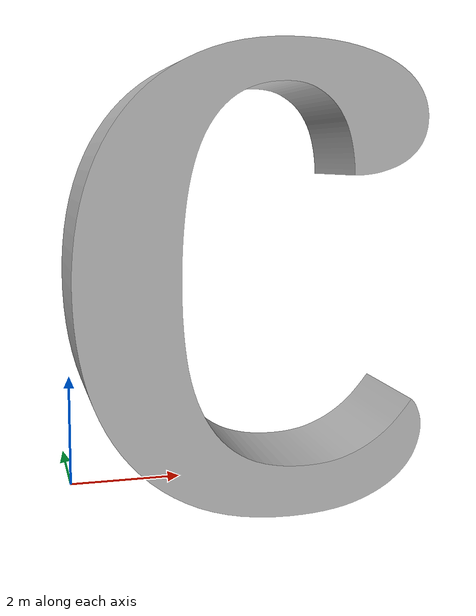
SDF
<sdf version='1.5'>
  <model name='text_C'>
    <link name='C'>
      <collision name='C_inertia_collision'>
        <pose frame=''>0 0 6.05 1.570796 -0 0</pose>
        <geometry>
          <mesh>
            <scale>0.2 0.2 0.2</scale>
            <uri>model://text_description/meshes/C.stl</uri>
          </mesh>
        </geometry>
        <surface>
          <contact>
            <ode>
              <min_depth>0.001</min_depth>
              <max_vel>0</max_vel>
            </ode>
          </contact>
          <friction>
            <ode/>
          </friction>
        </surface>
      </collision>
      <visual name='C_inertia_visual'>
        <pose frame=''>0 0 6.05 1.570796 -0 0</pose>
        <geometry>
          <mesh>
            <scale>0.2 0.2 0.2</scale>
            <uri>model://text_description/meshes/C.stl</uri>
          </mesh>
        </geometry>
      </visual>
      <kinematic>1</kinematic>
      <velocity_decay/>
    </link>
  </model>
</sdf>
